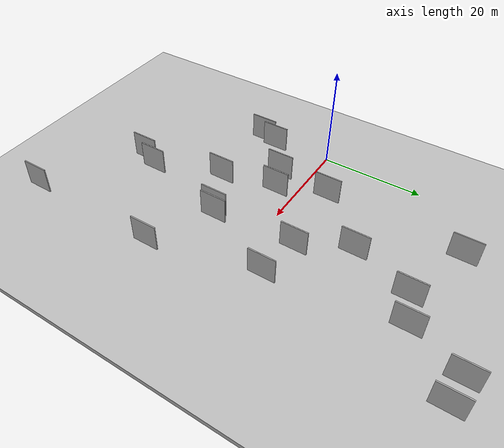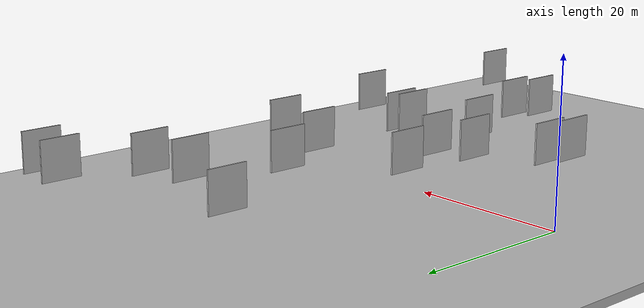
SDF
<?xml version="1.0" encoding="utf-8"?>

<sdf version="1.6">

   <world name="default">

      <gui fullscreen="0">

         <camera name="user_camera">

            <pose>-15 0 4.57585 0 0 0</pose>

            <view_controller>orbit</view_controller>

         </camera>

      </gui>

      <scene>

         <sky>

           <clouds>

             <speed>12</speed>

           </clouds>

         </sky>

         <ambient>0.4 0.4 0.4 1</ambient>

         <background>0.7 0.7 0.7 1</background>

         <shadows>1</shadows>

      </scene>

      <gravity>0 0 -9.8066</gravity>

      <magnetic_field>6e-06 2.3e-05 -4.2e-05</magnetic_field>

      <physics default="0" name="default_physics" type="ode">

         <ode>

            <solver>

               <type>quick</type>

               <iters>10</iters>

               <sor>1.0</sor>

               <use_dynamic_moi_rescaling>0</use_dynamic_moi_rescaling>

            </solver>

            <constraints>

               <cfm>0</cfm>

               <erp>0.2</erp>

               <contact_max_correcting_vel>100</contact_max_correcting_vel>

               <contact_surface_layer>0.001</contact_surface_layer>

            </constraints>

         </ode>

         <max_step_size>0.004</max_step_size>

         <real_time_factor>1</real_time_factor>

         <real_time_update_rate>250</real_time_update_rate>

      </physics>

      <light name="sun" type="directional">

         <cast_shadows>1</cast_shadows>

         <pose>0 0 10 0 0 0</pose>

         <diffuse>0.8 0.8 0.8 1</diffuse>

         <specular>0.2 0.2 0.2 1</specular>

         <attenuation>

            <range>1000</range>

            <constant>0.9</constant>

            <linear>0.01</linear>

            <quadratic>0.001</quadratic>

         </attenuation>

         <direction>-0.5 0.1 -0.9</direction>

      </light>

      <include>

         <name>ground_plane_1</name>

         <uri>model://HANNAS_ground_plane</uri>

         <pose>0 0 0  0 0 0</pose>

      </include>

      <include>

         <name>ground_plane_2</name>

         <uri>model://HANNAS_ground_plane</uri>

         <pose>100 0 0  0 0 0</pose>

      </include>

      <model name="HANNAS_wall_1">

         <static>1</static>

         <pose frame="">29.4389 28.0025 5.0 0.000000 0.000000 1.570796</pose>

         <link name="link">

            <pose frame="">0 0 2.50 0 0 0</pose>

            <collision name="collision">

               <geometry>

                  <box>

                     <size>5.00 0.2 5.00</size>

                  </box>

               </geometry>

               <max_contacts>10</max_contacts>

               <surface>

                  <contact>

                     <ode/>

                  </contact>

                  <bounce/>

                  <friction>

                     <torsional>

                        <ode/>

                     </torsional>

                     <ode/>

                  </friction>

               </surface>

            </collision>

            <visual name="visual">

               <cast_shadows>0</cast_shadows>

               <geometry>

                  <box>

                     <size>5.00 0.2 5.00</size>

                  </box>

               </geometry>

               <material>

                  <script>

                     <uri>model://HANNAS_wall/materials/scripts</uri>

                     <uri>model://HANNAS_wall/materials/textures</uri>

                     <name>vrc/HANNAS_wall</name>

                  </script>

               </material>

            </visual>

            <self_collide>0</self_collide>

            <enable_wind>0</enable_wind>

            <kinematic>0</kinematic>

         </link>

      </model>

      <model name="HANNAS_wall_2">

         <static>1</static>

         <pose frame="">43.5524 38.7300 5.0 0.000000 0.000000 1.570796</pose>

         <link name="link">

            <pose frame="">0 0 2.50 0 0 0</pose>

            <collision name="collision">

               <geometry>

                  <box>

                     <size>5.00 0.2 5.00</size>

                  </box>

               </geometry>

               <max_contacts>10</max_contacts>

               <surface>

                  <contact>

                     <ode/>

                  </contact>

                  <bounce/>

                  <friction>

                     <torsional>

                        <ode/>

                     </torsional>

                     <ode/>

                  </friction>

               </surface>

            </collision>

            <visual name="visual">

               <cast_shadows>0</cast_shadows>

               <geometry>

                  <box>

                     <size>5.00 0.2 5.00</size>

                  </box>

               </geometry>

               <material>

                  <script>

                     <uri>model://HANNAS_wall/materials/scripts</uri>

                     <uri>model://HANNAS_wall/materials/textures</uri>

                     <name>vrc/HANNAS_wall</name>

                  </script>

               </material>

            </visual>

            <self_collide>0</self_collide>

            <enable_wind>0</enable_wind>

            <kinematic>0</kinematic>

         </link>

      </model>

      <model name="HANNAS_wall_3">

         <static>1</static>

         <pose frame="">41.8122 -37.4870 5.0 0.000000 0.000000 1.570796</pose>

         <link name="link">

            <pose frame="">0 0 2.50 0 0 0</pose>

            <collision name="collision">

               <geometry>

                  <box>

                     <size>5.00 0.2 5.00</size>

                  </box>

               </geometry>

               <max_contacts>10</max_contacts>

               <surface>

                  <contact>

                     <ode/>

                  </contact>

                  <bounce/>

                  <friction>

                     <torsional>

                        <ode/>

                     </torsional>

                     <ode/>

                  </friction>

               </surface>

            </collision>

            <visual name="visual">

               <cast_shadows>0</cast_shadows>

               <geometry>

                  <box>

                     <size>5.00 0.2 5.00</size>

                  </box>

               </geometry>

               <material>

                  <script>

                     <uri>model://HANNAS_wall/materials/scripts</uri>

                     <uri>model://HANNAS_wall/materials/textures</uri>

                     <name>vrc/HANNAS_wall</name>

                  </script>

               </material>

            </visual>

            <self_collide>0</self_collide>

            <enable_wind>0</enable_wind>

            <kinematic>0</kinematic>

         </link>

      </model>

      <model name="HANNAS_wall_4">

         <static>1</static>

         <pose frame="">6.7335 -11.1729 5.0 0.000000 0.000000 1.570796</pose>

         <link name="link">

            <pose frame="">0 0 2.50 0 0 0</pose>

            <collision name="collision">

               <geometry>

                  <box>

                     <size>5.00 0.2 5.00</size>

                  </box>

               </geometry>

               <max_contacts>10</max_contacts>

               <surface>

                  <contact>

                     <ode/>

                  </contact>

                  <bounce/>

                  <friction>

                     <torsional>

                        <ode/>

                     </torsional>

                     <ode/>

                  </friction>

               </surface>

            </collision>

            <visual name="visual">

               <cast_shadows>0</cast_shadows>

               <geometry>

                  <box>

                     <size>5.00 0.2 5.00</size>

                  </box>

               </geometry>

               <material>

                  <script>

                     <uri>model://HANNAS_wall/materials/scripts</uri>

                     <uri>model://HANNAS_wall/materials/textures</uri>

                     <name>vrc/HANNAS_wall</name>

                  </script>

               </material>

            </visual>

            <self_collide>0</self_collide>

            <enable_wind>0</enable_wind>

            <kinematic>0</kinematic>

         </link>

      </model>

      <model name="HANNAS_wall_5">

         <static>1</static>

         <pose frame="">7.7138 -8.0457 5.0 0.000000 0.000000 1.570796</pose>

         <link name="link">

            <pose frame="">0 0 2.50 0 0 0</pose>

            <collision name="collision">

               <geometry>

                  <box>

                     <size>5.00 0.2 5.00</size>

                  </box>

               </geometry>

               <max_contacts>10</max_contacts>

               <surface>

                  <contact>

                     <ode/>

                  </contact>

                  <bounce/>

                  <friction>

                     <torsional>

                        <ode/>

                     </torsional>

                     <ode/>

                  </friction>

               </surface>

            </collision>

            <visual name="visual">

               <cast_shadows>0</cast_shadows>

               <geometry>

                  <box>

                     <size>5.00 0.2 5.00</size>

                  </box>

               </geometry>

               <material>

                  <script>

                     <uri>model://HANNAS_wall/materials/scripts</uri>

                     <uri>model://HANNAS_wall/materials/textures</uri>

                     <name>vrc/HANNAS_wall</name>

                  </script>

               </material>

            </visual>

            <self_collide>0</self_collide>

            <enable_wind>0</enable_wind>

            <kinematic>0</kinematic>

         </link>

      </model>

      <model name="HANNAS_wall_6">

         <static>1</static>

         <pose frame="">34.7282 29.8574 5.0 0.000000 0.000000 1.570796</pose>

         <link name="link">

            <pose frame="">0 0 2.50 0 0 0</pose>

            <collision name="collision">

               <geometry>

                  <box>

                     <size>5.00 0.2 5.00</size>

                  </box>

               </geometry>

               <max_contacts>10</max_contacts>

               <surface>

                  <contact>

                     <ode/>

                  </contact>

                  <bounce/>

                  <friction>

                     <torsional>

                        <ode/>

                     </torsional>

                     <ode/>

                  </friction>

               </surface>

            </collision>

            <visual name="visual">

               <cast_shadows>0</cast_shadows>

               <geometry>

                  <box>

                     <size>5.00 0.2 5.00</size>

                  </box>

               </geometry>

               <material>

                  <script>

                     <uri>model://HANNAS_wall/materials/scripts</uri>

                     <uri>model://HANNAS_wall/materials/textures</uri>

                     <name>vrc/HANNAS_wall</name>

                  </script>

               </material>

            </visual>

            <self_collide>0</self_collide>

            <enable_wind>0</enable_wind>

            <kinematic>0</kinematic>

         </link>

      </model>

      <model name="HANNAS_wall_7">

         <static>1</static>

         <pose frame="">17.0164 32.3342 5.0 0.000000 0.000000 1.570796</pose>

         <link name="link">

            <pose frame="">0 0 2.50 0 0 0</pose>

            <collision name="collision">

               <geometry>

                  <box>

                     <size>5.00 0.2 5.00</size>

                  </box>

               </geometry>

               <max_contacts>10</max_contacts>

               <surface>

                  <contact>

                     <ode/>

                  </contact>

                  <bounce/>

                  <friction>

                     <torsional>

                        <ode/>

                     </torsional>

                     <ode/>

                  </friction>

               </surface>

            </collision>

            <visual name="visual">

               <cast_shadows>0</cast_shadows>

               <geometry>

                  <box>

                     <size>5.00 0.2 5.00</size>

                  </box>

               </geometry>

               <material>

                  <script>

                     <uri>model://HANNAS_wall/materials/scripts</uri>

                     <uri>model://HANNAS_wall/materials/textures</uri>

                     <name>vrc/HANNAS_wall</name>

                  </script>

               </material>

            </visual>

            <self_collide>0</self_collide>

            <enable_wind>0</enable_wind>

            <kinematic>0</kinematic>

         </link>

      </model>

      <model name="HANNAS_wall_8">

         <static>1</static>

         <pose frame="">30.8774 -6.6050 5.0 0.000000 0.000000 1.570796</pose>

         <link name="link">

            <pose frame="">0 0 2.50 0 0 0</pose>

            <collision name="collision">

               <geometry>

                  <box>

                     <size>5.00 0.2 5.00</size>

                  </box>

               </geometry>

               <max_contacts>10</max_contacts>

               <surface>

                  <contact>

                     <ode/>

                  </contact>

                  <bounce/>

                  <friction>

                     <torsional>

                        <ode/>

                     </torsional>

                     <ode/>

                  </friction>

               </surface>

            </collision>

            <visual name="visual">

               <cast_shadows>0</cast_shadows>

               <geometry>

                  <box>

                     <size>5.00 0.2 5.00</size>

                  </box>

               </geometry>

               <material>

                  <script>

                     <uri>model://HANNAS_wall/materials/scripts</uri>

                     <uri>model://HANNAS_wall/materials/textures</uri>

                     <name>vrc/HANNAS_wall</name>

                  </script>

               </material>

            </visual>

            <self_collide>0</self_collide>

            <enable_wind>0</enable_wind>

            <kinematic>0</kinematic>

         </link>

      </model>

      <model name="HANNAS_wall_9">

         <static>1</static>

         <pose frame="">38.6736 39.1588 5.0 0.000000 0.000000 1.570796</pose>

         <link name="link">

            <pose frame="">0 0 2.50 0 0 0</pose>

            <collision name="collision">

               <geometry>

                  <box>

                     <size>5.00 0.2 5.00</size>

                  </box>

               </geometry>

               <max_contacts>10</max_contacts>

               <surface>

                  <contact>

                     <ode/>

                  </contact>

                  <bounce/>

                  <friction>

                     <torsional>

                        <ode/>

                     </torsional>

                     <ode/>

                  </friction>

               </surface>

            </collision>

            <visual name="visual">

               <cast_shadows>0</cast_shadows>

               <geometry>

                  <box>

                     <size>5.00 0.2 5.00</size>

                  </box>

               </geometry>

               <material>

                  <script>

                     <uri>model://HANNAS_wall/materials/scripts</uri>

                     <uri>model://HANNAS_wall/materials/textures</uri>

                     <name>vrc/HANNAS_wall</name>

                  </script>

               </material>

            </visual>

            <self_collide>0</self_collide>

            <enable_wind>0</enable_wind>

            <kinematic>0</kinematic>

         </link>

      </model>

      <model name="HANNAS_wall_10">

         <static>1</static>

         <pose frame="">19.2969 -1.1684 5.0 0.000000 0.000000 1.570796</pose>

         <link name="link">

            <pose frame="">0 0 2.50 0 0 0</pose>

            <collision name="collision">

               <geometry>

                  <box>

                     <size>5.00 0.2 5.00</size>

                  </box>

               </geometry>

               <max_contacts>10</max_contacts>

               <surface>

                  <contact>

                     <ode/>

                  </contact>

                  <bounce/>

                  <friction>

                     <torsional>

                        <ode/>

                     </torsional>

                     <ode/>

                  </friction>

               </surface>

            </collision>

            <visual name="visual">

               <cast_shadows>0</cast_shadows>

               <geometry>

                  <box>

                     <size>5.00 0.2 5.00</size>

                  </box>

               </geometry>

               <material>

                  <script>

                     <uri>model://HANNAS_wall/materials/scripts</uri>

                     <uri>model://HANNAS_wall/materials/textures</uri>

                     <name>vrc/HANNAS_wall</name>

                  </script>

               </material>

            </visual>

            <self_collide>0</self_collide>

            <enable_wind>0</enable_wind>

            <kinematic>0</kinematic>

         </link>

      </model>

      <model name="HANNAS_wall_11">

         <static>1</static>

         <pose frame="">29.5207 -7.3652 5.0 0.000000 0.000000 1.570796</pose>

         <link name="link">

            <pose frame="">0 0 2.50 0 0 0</pose>

            <collision name="collision">

               <geometry>

                  <box>

                     <size>5.00 0.2 5.00</size>

                  </box>

               </geometry>

               <max_contacts>10</max_contacts>

               <surface>

                  <contact>

                     <ode/>

                  </contact>

                  <bounce/>

                  <friction>

                     <torsional>

                        <ode/>

                     </torsional>

                     <ode/>

                  </friction>

               </surface>

            </collision>

            <visual name="visual">

               <cast_shadows>0</cast_shadows>

               <geometry>

                  <box>

                     <size>5.00 0.2 5.00</size>

                  </box>

               </geometry>

               <material>

                  <script>

                     <uri>model://HANNAS_wall/materials/scripts</uri>

                     <uri>model://HANNAS_wall/materials/textures</uri>

                     <name>vrc/HANNAS_wall</name>

                  </script>

               </material>

            </visual>

            <self_collide>0</self_collide>

            <enable_wind>0</enable_wind>

            <kinematic>0</kinematic>

         </link>

      </model>

      <model name="HANNAS_wall_12">

         <static>1</static>

         <pose frame="">29.8530 8.5538 5.0 0.000000 0.000000 1.570796</pose>

         <link name="link">

            <pose frame="">0 0 2.50 0 0 0</pose>

            <collision name="collision">

               <geometry>

                  <box>

                     <size>5.00 0.2 5.00</size>

                  </box>

               </geometry>

               <max_contacts>10</max_contacts>

               <surface>

                  <contact>

                     <ode/>

                  </contact>

                  <bounce/>

                  <friction>

                     <torsional>

                        <ode/>

                     </torsional>

                     <ode/>

                  </friction>

               </surface>

            </collision>

            <visual name="visual">

               <cast_shadows>0</cast_shadows>

               <geometry>

                  <box>

                     <size>5.00 0.2 5.00</size>

                  </box>

               </geometry>

               <material>

                  <script>

                     <uri>model://HANNAS_wall/materials/scripts</uri>

                     <uri>model://HANNAS_wall/materials/textures</uri>

                     <name>vrc/HANNAS_wall</name>

                  </script>

               </material>

            </visual>

            <self_collide>0</self_collide>

            <enable_wind>0</enable_wind>

            <kinematic>0</kinematic>

         </link>

      </model>

      <model name="HANNAS_wall_13">

         <static>1</static>

         <pose frame="">37.6269 7.2678 5.0 0.000000 0.000000 1.570796</pose>

         <link name="link">

            <pose frame="">0 0 2.50 0 0 0</pose>

            <collision name="collision">

               <geometry>

                  <box>

                     <size>5.00 0.2 5.00</size>

                  </box>

               </geometry>

               <max_contacts>10</max_contacts>

               <surface>

                  <contact>

                     <ode/>

                  </contact>

                  <bounce/>

                  <friction>

                     <torsional>

                        <ode/>

                     </torsional>

                     <ode/>

                  </friction>

               </surface>

            </collision>

            <visual name="visual">

               <cast_shadows>0</cast_shadows>

               <geometry>

                  <box>

                     <size>5.00 0.2 5.00</size>

                  </box>

               </geometry>

               <material>

                  <script>

                     <uri>model://HANNAS_wall/materials/scripts</uri>

                     <uri>model://HANNAS_wall/materials/textures</uri>

                     <name>vrc/HANNAS_wall</name>

                  </script>

               </material>

            </visual>

            <self_collide>0</self_collide>

            <enable_wind>0</enable_wind>

            <kinematic>0</kinematic>

         </link>

      </model>

      <model name="HANNAS_wall_14">

         <static>1</static>

         <pose frame="">14.7326 -2.8354 5.0 0.000000 0.000000 1.570796</pose>

         <link name="link">

            <pose frame="">0 0 2.50 0 0 0</pose>

            <collision name="collision">

               <geometry>

                  <box>

                     <size>5.00 0.2 5.00</size>

                  </box>

               </geometry>

               <max_contacts>10</max_contacts>

               <surface>

                  <contact>

                     <ode/>

                  </contact>

                  <bounce/>

                  <friction>

                     <torsional>

                        <ode/>

                     </torsional>

                     <ode/>

                  </friction>

               </surface>

            </collision>

            <visual name="visual">

               <cast_shadows>0</cast_shadows>

               <geometry>

                  <box>

                     <size>5.00 0.2 5.00</size>

                  </box>

               </geometry>

               <material>

                  <script>

                     <uri>model://HANNAS_wall/materials/scripts</uri>

                     <uri>model://HANNAS_wall/materials/textures</uri>

                     <name>vrc/HANNAS_wall</name>

                  </script>

               </material>

            </visual>

            <self_collide>0</self_collide>

            <enable_wind>0</enable_wind>

            <kinematic>0</kinematic>

         </link>

      </model>

      <model name="HANNAS_wall_15">

         <static>1</static>

         <pose frame="">21.5948 -11.2613 5.0 0.000000 0.000000 1.570796</pose>

         <link name="link">

            <pose frame="">0 0 2.50 0 0 0</pose>

            <collision name="collision">

               <geometry>

                  <box>

                     <size>5.00 0.2 5.00</size>

                  </box>

               </geometry>

               <max_contacts>10</max_contacts>

               <surface>

                  <contact>

                     <ode/>

                  </contact>

                  <bounce/>

                  <friction>

                     <torsional>

                        <ode/>

                     </torsional>

                     <ode/>

                  </friction>

               </surface>

            </collision>

            <visual name="visual">

               <cast_shadows>0</cast_shadows>

               <geometry>

                  <box>

                     <size>5.00 0.2 5.00</size>

                  </box>

               </geometry>

               <material>

                  <script>

                     <uri>model://HANNAS_wall/materials/scripts</uri>

                     <uri>model://HANNAS_wall/materials/textures</uri>

                     <name>vrc/HANNAS_wall</name>

                  </script>

               </material>

            </visual>

            <self_collide>0</self_collide>

            <enable_wind>0</enable_wind>

            <kinematic>0</kinematic>

         </link>

      </model>

      <model name="HANNAS_wall_16">

         <static>1</static>

         <pose frame="">42.1962 -12.2441 5.0 0.000000 0.000000 1.570796</pose>

         <link name="link">

            <pose frame="">0 0 2.50 0 0 0</pose>

            <collision name="collision">

               <geometry>

                  <box>

                     <size>5.00 0.2 5.00</size>

                  </box>

               </geometry>

               <max_contacts>10</max_contacts>

               <surface>

                  <contact>

                     <ode/>

                  </contact>

                  <bounce/>

                  <friction>

                     <torsional>

                        <ode/>

                     </torsional>

                     <ode/>

                  </friction>

               </surface>

            </collision>

            <visual name="visual">

               <cast_shadows>0</cast_shadows>

               <geometry>

                  <box>

                     <size>5.00 0.2 5.00</size>

                  </box>

               </geometry>

               <material>

                  <script>

                     <uri>model://HANNAS_wall/materials/scripts</uri>

                     <uri>model://HANNAS_wall/materials/textures</uri>

                     <name>vrc/HANNAS_wall</name>

                  </script>

               </material>

            </visual>

            <self_collide>0</self_collide>

            <enable_wind>0</enable_wind>

            <kinematic>0</kinematic>

         </link>

      </model>

      <model name="HANNAS_wall_17">

         <static>1</static>

         <pose frame="">26.1357 -23.5373 5.0 0.000000 0.000000 1.570796</pose>

         <link name="link">

            <pose frame="">0 0 2.50 0 0 0</pose>

            <collision name="collision">

               <geometry>

                  <box>

                     <size>5.00 0.2 5.00</size>

                  </box>

               </geometry>

               <max_contacts>10</max_contacts>

               <surface>

                  <contact>

                     <ode/>

                  </contact>

                  <bounce/>

                  <friction>

                     <torsional>

                        <ode/>

                     </torsional>

                     <ode/>

                  </friction>

               </surface>

            </collision>

            <visual name="visual">

               <cast_shadows>0</cast_shadows>

               <geometry>

                  <box>

                     <size>5.00 0.2 5.00</size>

                  </box>

               </geometry>

               <material>

                  <script>

                     <uri>model://HANNAS_wall/materials/scripts</uri>

                     <uri>model://HANNAS_wall/materials/textures</uri>

                     <name>vrc/HANNAS_wall</name>

                  </script>

               </material>

            </visual>

            <self_collide>0</self_collide>

            <enable_wind>0</enable_wind>

            <kinematic>0</kinematic>

         </link>

      </model>

      <model name="HANNAS_wall_18">

         <static>1</static>

         <pose frame="">24.4154 -26.9257 5.0 0.000000 0.000000 1.570796</pose>

         <link name="link">

            <pose frame="">0 0 2.50 0 0 0</pose>

            <collision name="collision">

               <geometry>

                  <box>

                     <size>5.00 0.2 5.00</size>

                  </box>

               </geometry>

               <max_contacts>10</max_contacts>

               <surface>

                  <contact>

                     <ode/>

                  </contact>

                  <bounce/>

                  <friction>

                     <torsional>

                        <ode/>

                     </torsional>

                     <ode/>

                  </friction>

               </surface>

            </collision>

            <visual name="visual">

               <cast_shadows>0</cast_shadows>

               <geometry>

                  <box>

                     <size>5.00 0.2 5.00</size>

                  </box>

               </geometry>

               <material>

                  <script>

                     <uri>model://HANNAS_wall/materials/scripts</uri>

                     <uri>model://HANNAS_wall/materials/textures</uri>

                     <name>vrc/HANNAS_wall</name>

                  </script>

               </material>

            </visual>

            <self_collide>0</self_collide>

            <enable_wind>0</enable_wind>

            <kinematic>0</kinematic>

         </link>

      </model>

      <model name="HANNAS_wall_19">

         <static>1</static>

         <pose frame="">25.4565 17.1690 5.0 0.000000 0.000000 1.570796</pose>

         <link name="link">

            <pose frame="">0 0 2.50 0 0 0</pose>

            <collision name="collision">

               <geometry>

                  <box>

                     <size>5.00 0.2 5.00</size>

                  </box>

               </geometry>

               <max_contacts>10</max_contacts>

               <surface>

                  <contact>

                     <ode/>

                  </contact>

                  <bounce/>

                  <friction>

                     <torsional>

                        <ode/>

                     </torsional>

                     <ode/>

                  </friction>

               </surface>

            </collision>

            <visual name="visual">

               <cast_shadows>0</cast_shadows>

               <geometry>

                  <box>

                     <size>5.00 0.2 5.00</size>

                  </box>

               </geometry>

               <material>

                  <script>

                     <uri>model://HANNAS_wall/materials/scripts</uri>

                     <uri>model://HANNAS_wall/materials/textures</uri>

                     <name>vrc/HANNAS_wall</name>

                  </script>

               </material>

            </visual>

            <self_collide>0</self_collide>

            <enable_wind>0</enable_wind>

            <kinematic>0</kinematic>

         </link>

      </model>

      <model name="HANNAS_wall_20">

         <static>1</static>

         <pose frame="">15.7829 7.4024 5.0 0.000000 0.000000 1.570796</pose>

         <link name="link">

            <pose frame="">0 0 2.50 0 0 0</pose>

            <collision name="collision">

               <geometry>

                  <box>

                     <size>5.00 0.2 5.00</size>

                  </box>

               </geometry>

               <max_contacts>10</max_contacts>

               <surface>

                  <contact>

                     <ode/>

                  </contact>

                  <bounce/>

                  <friction>

                     <torsional>

                        <ode/>

                     </torsional>

                     <ode/>

                  </friction>

               </surface>

            </collision>

            <visual name="visual">

               <cast_shadows>0</cast_shadows>

               <geometry>

                  <box>

                     <size>5.00 0.2 5.00</size>

                  </box>

               </geometry>

               <material>

                  <script>

                     <uri>model://HANNAS_wall/materials/scripts</uri>

                     <uri>model://HANNAS_wall/materials/textures</uri>

                     <name>vrc/HANNAS_wall</name>

                  </script>

               </material>

            </visual>

            <self_collide>0</self_collide>

            <enable_wind>0</enable_wind>

            <kinematic>0</kinematic>

         </link>

      </model>

   </world>

</sdf>

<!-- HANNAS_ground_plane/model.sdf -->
<sdf version="1.4">
<model name="HANNAS_ground_plane">
  <static>true</static>
    <link name="link">
      <collision name="collision">
        <geometry>
          <plane>
            <normal>0 0 1</normal>
            <size>1000 1000</size>
          </plane>
        </geometry>
        <surface>
          <friction>
            <ode>
              <mu>100</mu>
              <mu2>50</mu2>
            </ode>
          </friction>
        </surface>
      </collision>
      <visual name="visual">
        <cast_shadows>false</cast_shadows>
        <geometry>
          <plane>
            <normal>0 0 1</normal>
            <size>1000 1000</size>
          </plane>
        </geometry>
        <material>
          <script>
            <uri>model://HANNAS_ground_plane/materials/scripts/HANNAS_ground_plane.material</uri>
	    <uri>model://HANNAS_ground_plane/materials/textures</uri>
            <name>HANNASGroundPlane/Image</name>
          </script>
        </material>
      </visual>
    </link>
  </model>
</sdf>
